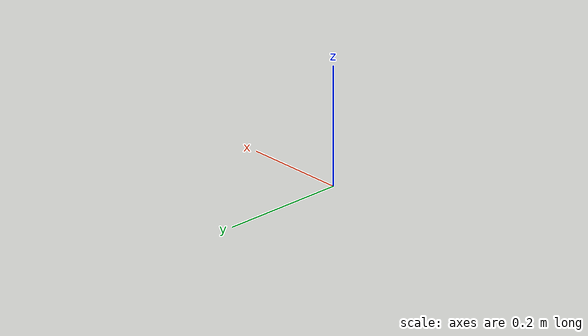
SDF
<?xml version='1.0'?>
<sdf version='1.6'>
		<model name="1-SRanger">
			<self_collide>true</self_collide>
			<pose>0.0 0.0 0.0 0.0 0.0 0.0</pose>
			<!-- Start of parts of the pmodel null::SRanger -->
			<!-- End of parts of the pmodel null::SRanger -->

			<!-- Start of links of the pmodel null::SRanger -->
			<!-- link full name is null::SRanger::Base -->
			<link name="2-Base">
					<pose>0.0 0.0 0.0 0.0 0.0 0.0</pose>
					<inertial>
						<pose>0.0 0.0 0.0 0.0 0.0 0.0</pose>
						<inertia>
							<ixx>1.0</ixx>
							<ixy>0.0</ixy>
							<ixz>0.0</ixz>
							<iyy>1.0</iyy>
							<iyz>0.0</iyz>
							<izz>1.0</izz>
						</inertia>
						<mass>1.0</mass>
					</inertial>
					<collision name="3-CasterWheel">
						<laser_retro>0.0</laser_retro>
						<pose>-0.0 0.0 -0.0 0.0 0.0 0.0</pose>
						<geometry>
						<sphere>
							<radius>0.0</radius>
						</sphere>
						</geometry>
						<surface>
							<bounce>
								<restitution_coefficient>0.0</restitution_coefficient>
								<threshold>100000.0</threshold>
							</bounce>
							<friction>
								<ode>
									<mu>1.0</mu>
									<mu2>1.0</mu2>
									<fdir1>0.0 0.0 0.0</fdir1>
									<slip1>0.0</slip1>
									<slip2>0.0</slip2>
								</ode>
								<torsional>
									<coefficient>1.0</coefficient>
									<surface_radius>0.0</surface_radius>
								</torsional>
							</friction>
						</surface>
					</collision>
					<visual name="3-CasterWheel">
						<laser_retro>0.0</laser_retro>
						<pose>-0.0 0.0 -0.0 0.0 0.0 0.0</pose>
						<geometry>
						<sphere>
							<radius>0.0</radius>
						</sphere>
						</geometry>
						<surface>
							<bounce>
								<restitution_coefficient>0.0</restitution_coefficient>
								<threshold>100000.0</threshold>
							</bounce>
							<friction>
								<ode>
									<mu>1.0</mu>
									<mu2>1.0</mu2>
									<fdir1>0.0 0.0 0.0</fdir1>
									<slip1>0.0</slip1>
									<slip2>0.0</slip2>
								</ode>
								<torsional>
									<coefficient>1.0</coefficient>
									<surface_radius>0.0</surface_radius>
								</torsional>
							</friction>
						</surface>
					</visual>
					<collision name="4-Chassis">
						<laser_retro>0.0</laser_retro>
						<pose>0.0 0.0 0.0 0.0 0.0 0.0</pose>
						<geometry>
						<box>
							<size>0.0 0.0 0.0</size>
						</box>
						</geometry>
						<surface>
							<bounce>
								<restitution_coefficient>0.0</restitution_coefficient>
								<threshold>100000.0</threshold>
							</bounce>
							<friction>
								<ode>
									<mu>1.0</mu>
									<mu2>1.0</mu2>
									<fdir1>0.0 0.0 0.0</fdir1>
									<slip1>0.0</slip1>
									<slip2>0.0</slip2>
								</ode>
								<torsional>
									<coefficient>1.0</coefficient>
									<surface_radius>0.0</surface_radius>
								</torsional>
							</friction>
						</surface>
					</collision>
					<visual name="4-Chassis">
						<laser_retro>0.0</laser_retro>
						<pose>0.0 0.0 0.0 0.0 0.0 0.0</pose>
						<geometry>
						<box>
							<size>0.0 0.0 0.0</size>
						</box>
						</geometry>
						<surface>
							<bounce>
								<restitution_coefficient>0.0</restitution_coefficient>
								<threshold>100000.0</threshold>
							</bounce>
							<friction>
								<ode>
									<mu>1.0</mu>
									<mu2>1.0</mu2>
									<fdir1>0.0 0.0 0.0</fdir1>
									<slip1>0.0</slip1>
									<slip2>0.0</slip2>
								</ode>
								<torsional>
									<coefficient>1.0</coefficient>
									<surface_radius>0.0</surface_radius>
								</torsional>
							</friction>
						</surface>
					</visual>
			</link>
			<!-- link full name is null::SRanger::LWheel -->
			<link name="5-LWheel">
					<pose>0.0 0.5 0.0 0.0 1.57075 1.57075</pose>
					<inertial>
						<pose>0.0 0.0 0.0 0.0 0.0 0.0</pose>
						<inertia>
							<ixx>1.0</ixx>
							<ixy>0.0</ixy>
							<ixz>0.0</ixz>
							<iyy>1.0</iyy>
							<iyz>0.0</iyz>
							<izz>1.0</izz>
						</inertia>
						<mass>1.0</mass>
					</inertial>
					<collision name="6-Wheel">
						<laser_retro>0.0</laser_retro>
						<pose>0.0 0.0 0.0 0.0 0.0 0.0</pose>
						<geometry>
						<cylinder>
							<radius>0.0</radius>
							<length>0.0</length>
						</cylinder>
						</geometry>
						<surface>
							<bounce>
								<restitution_coefficient>0.0</restitution_coefficient>
								<threshold>100000.0</threshold>
							</bounce>
							<friction>
								<ode>
									<mu>1.0</mu>
									<mu2>1.0</mu2>
									<fdir1>0.0 0.0 0.0</fdir1>
									<slip1>0.0</slip1>
									<slip2>0.0</slip2>
								</ode>
								<torsional>
									<coefficient>1.0</coefficient>
									<surface_radius>0.0</surface_radius>
								</torsional>
							</friction>
						</surface>
					</collision>
					<visual name="6-Wheel">
						<laser_retro>0.0</laser_retro>
						<pose>0.0 0.0 0.0 0.0 0.0 0.0</pose>
						<geometry>
						<cylinder>
							<radius>0.0</radius>
							<length>0.0</length>
						</cylinder>
						</geometry>
						<surface>
							<bounce>
								<restitution_coefficient>0.0</restitution_coefficient>
								<threshold>100000.0</threshold>
							</bounce>
							<friction>
								<ode>
									<mu>1.0</mu>
									<mu2>1.0</mu2>
									<fdir1>0.0 0.0 0.0</fdir1>
									<slip1>0.0</slip1>
									<slip2>0.0</slip2>
								</ode>
								<torsional>
									<coefficient>1.0</coefficient>
									<surface_radius>0.0</surface_radius>
								</torsional>
							</friction>
						</surface>
					</visual>
			</link>
			<!-- link full name is null::SRanger::RWheel -->
			<link name="7-RWheel">
					<pose>0.0 -0.5 0.0 0.0 1.57075 1.57075</pose>
					<inertial>
						<pose>0.0 0.0 0.0 0.0 0.0 0.0</pose>
						<inertia>
							<ixx>1.0</ixx>
							<ixy>0.0</ixy>
							<ixz>0.0</ixz>
							<iyy>1.0</iyy>
							<iyz>0.0</iyz>
							<izz>1.0</izz>
						</inertia>
						<mass>1.0</mass>
					</inertial>
					<collision name="8-Wheel">
						<laser_retro>0.0</laser_retro>
						<pose>0.0 0.0 0.0 0.0 0.0 0.0</pose>
						<geometry>
						<cylinder>
							<radius>0.0</radius>
							<length>0.0</length>
						</cylinder>
						</geometry>
						<surface>
							<bounce>
								<restitution_coefficient>0.0</restitution_coefficient>
								<threshold>100000.0</threshold>
							</bounce>
							<friction>
								<ode>
									<mu>1.0</mu>
									<mu2>1.0</mu2>
									<fdir1>0.0 0.0 0.0</fdir1>
									<slip1>0.0</slip1>
									<slip2>0.0</slip2>
								</ode>
								<torsional>
									<coefficient>1.0</coefficient>
									<surface_radius>0.0</surface_radius>
								</torsional>
							</friction>
						</surface>
					</collision>
					<visual name="8-Wheel">
						<laser_retro>0.0</laser_retro>
						<pose>0.0 0.0 0.0 0.0 0.0 0.0</pose>
						<geometry>
						<cylinder>
							<radius>0.0</radius>
							<length>0.0</length>
						</cylinder>
						</geometry>
						<surface>
							<bounce>
								<restitution_coefficient>0.0</restitution_coefficient>
								<threshold>100000.0</threshold>
							</bounce>
							<friction>
								<ode>
									<mu>1.0</mu>
									<mu2>1.0</mu2>
									<fdir1>0.0 0.0 0.0</fdir1>
									<slip1>0.0</slip1>
									<slip2>0.0</slip2>
								</ode>
								<torsional>
									<coefficient>1.0</coefficient>
									<surface_radius>0.0</surface_radius>
								</torsional>
							</friction>
						</surface>
					</visual>
			</link>
			<!-- End of links of the pmodel null::SRanger -->

			<!-- Start of joints of the pmodel null::SRanger -->
			<!-- Full name of joint: null::SRanger::Base::LHinge from null::SRanger::Base to null::SRanger::LWheel-->
			<joint name="9-LHinge" type="revolute">
				<pose>-2.3164352E-5 -2.3164352E-5 -0.5 1.57075 -4.6328703E-5 -1.5707964</pose>
				<parent>2-Base</parent>
				<child>5-LWheel</child>
				<!-- WARNING: Annotation not found in actuator. RoboSim actuators have no explicit counterparts in SDF,
					 so the generator must rely on annotations to produce something meaningful in SDF. -->
			</joint>
			<!-- Full name of joint: null::SRanger::Base::RHinge from null::SRanger::Base to null::SRanger::RWheel-->
			<joint name="10-RHinge" type="revolute">
				<pose>2.3164352E-5 2.3164352E-5 0.5 1.57075 -4.6328703E-5 -1.5707964</pose>
				<parent>2-Base</parent>
				<child>7-RWheel</child>
				<!-- WARNING: Annotation not found in actuator. RoboSim actuators have no explicit counterparts in SDF,
					 so the generator must rely on annotations to produce something meaningful in SDF. -->
			</joint>
			<!-- End of joints of the pmodel null::SRanger -->

			<!-- Start of fixed connections of the pmodel null::SRanger -->
			<!-- End of fixed connections of the pmodel null::SRanger -->
		</model>
</sdf>
